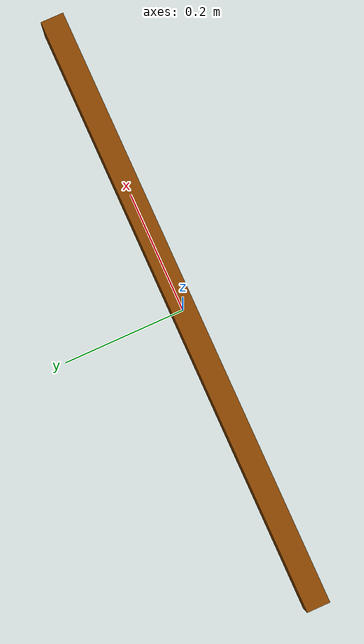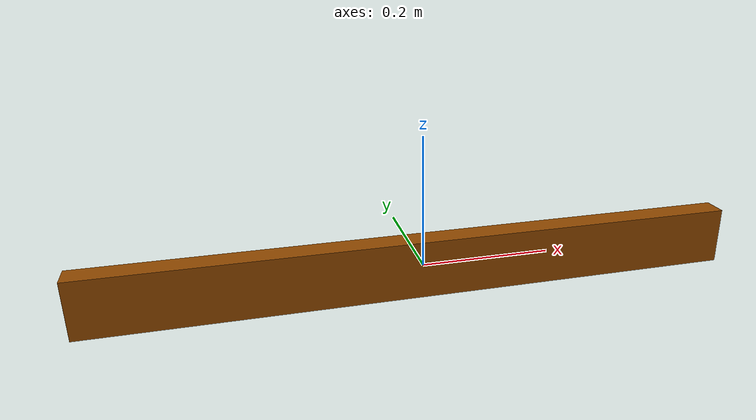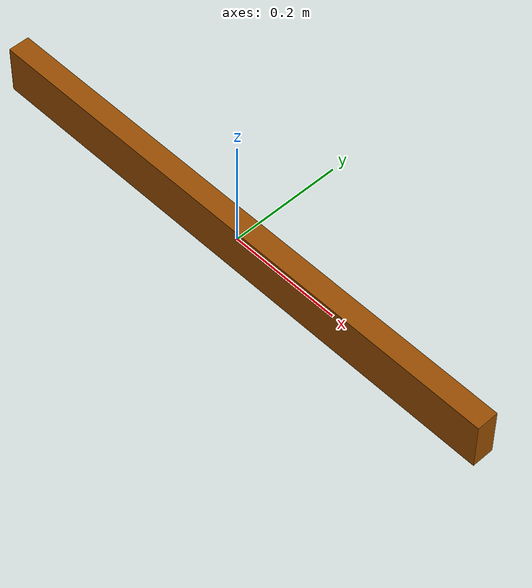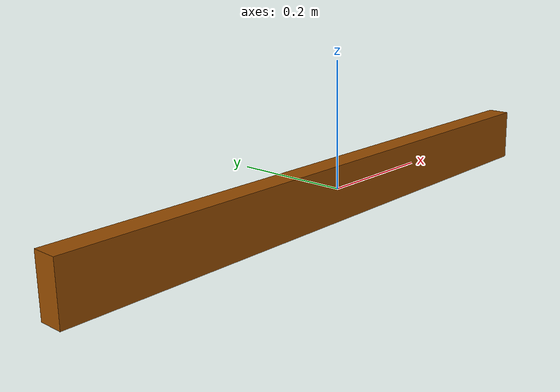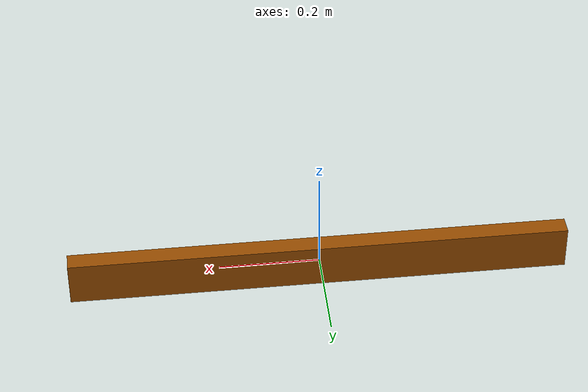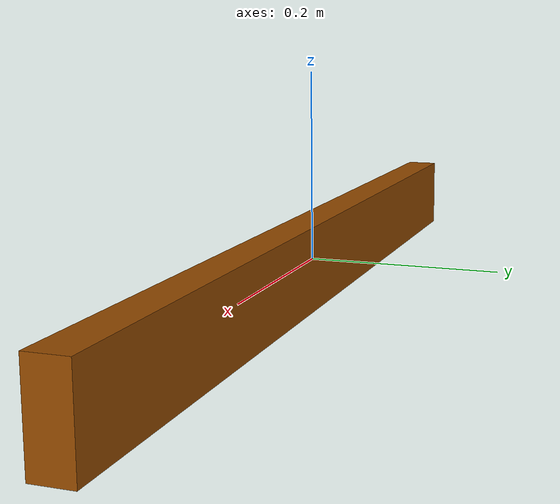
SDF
<?xml version='1.0'?>
<sdf version='1.4'>
	<model name="my_block">
		<static>false</static>
		<link name='link'>
			<pose>0 0 0 0 0 0</pose>
			<inertial>
				<mass>1.694</mass>
				<inertia>
					<ixx>0.14228</ixx>
					<ixy>0.0</ixy><iyy>0.14137</iyy>
					<ixz>0.0</ixz><iyz>0.0</iyz><izz>0.14228</izz>
				</inertia>
			</inertial>
			<visual name='visual'>
				<geometry>
					<box>
						<size>1 0.0381 .0889</size>
					</box>

				</geometry>
				<material>
					<ambient>0.6 0.3 0 1</ambient>
					<diffuse>0.6 0.3 0 1</diffuse>
					<specular>0.1 0.1 0.1 1</specular>
					<emissive>0 0 0 0</emissive>
				</material>
			</visual>
			<collision name='collision'>
				<geometry>
					<box>
						<size>1 0.0381 .0889</size>
					</box>
				</geometry>
				<surface>
					<bounce>
						<restitution_coefficient>0</restitution_coefficient>
					</bounce>
					<friction>
						<ode>
							<mu>1</mu>
							<mu2>1</mu2>
							<slip1>0.0</slip1>
							<slip2>0.0</slip2>
						</ode>
					</friction>
				</surface>
			</collision>
			<sensor name='contact_sensor' type='contact'>
				<plugin name="contact_plugin" filename="libcontact.so"/>
				<contact>
					<collision>collision</collision>
				</contact>
			</sensor>
		</link>
	</model>
</sdf>
